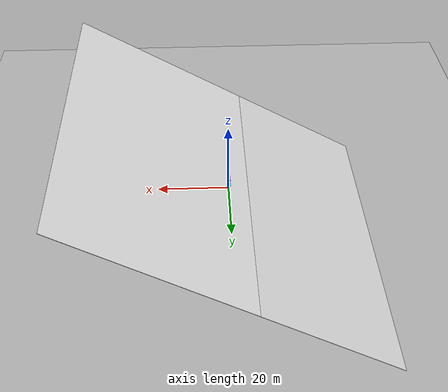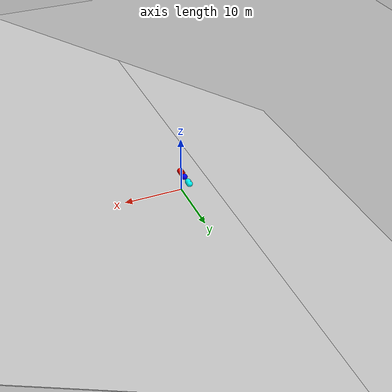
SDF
<sdf version="1.11">
 <world name="auto_inertia_rolling_shapes">
  <physics name="1ms" type="ignored">
   <max_step_size>0.001</max_step_size>
   <real_time_factor>1.0</real_time_factor>
  </physics>
  <plugin filename="gz-sim-physics-system" name="gz::sim::systems::Physics"/>
  <plugin filename="gz-sim-user-commands-system" name="gz::sim::systems::UserCommands"/>
  <plugin filename="gz-sim-scene-broadcaster-system" name="gz::sim::systems::SceneBroadcaster"/>
  <light type="directional" name="sun">
   <pose>0 0 10 0 0 0</pose>
   <diffuse>0.8 0.8 0.8 1</diffuse>
   <specular>0.2 0.2 0.2 1</specular>
   <attenuation>
    <range>1000</range>
    <constant>0.9</constant>
    <linear>0.01</linear>
    <quadratic>0.001</quadratic>
   </attenuation>
   <direction>-0.5 0.1 -0.9</direction>
  </light>
  <model name="inclined_plane">
   <static>true</static>
   <pose>0 0 3 0 -0.52 0</pose>
   <link name="link">
    <collision name="collision">
     <geometry><plane><normal>0 0 1</normal><size>100 100</size></plane></geometry>
    </collision>
    <visual name="visual">
     <geometry><plane><normal>0 0 1</normal><size>100 100</size></plane></geometry>
     <material>
      <ambient>0.8 0.8 0.8 1</ambient>
      <diffuse>0.8 0.8 0.8 1</diffuse>
      <specular>0.8 0.8 0.8 1</specular>
     </material>
    </visual>
   </link>
  </model>
  <model name="ground_plane">
   <static>true</static>
   <link name="link">
    <collision name="collision">
     <geometry><plane><normal>0 0 1</normal><size>100 100</size></plane></geometry>
    </collision>
    <visual name="visual">
     <geometry><plane><normal>0 0 1</normal><size>100 100</size></plane></geometry>
     <material>
      <ambient>0.8 0.8 0.8 1</ambient>
      <diffuse>0.8 0.8 0.8 1</diffuse>
      <specular>0.8 0.8 0.8 1</specular>
     </material>
    </visual>
   </link>
  </model>
  <model name="cylinder">
   <pose>0 0 3.6 1.57079632679 0 0</pose>
   <link name="cylinder_link">
    <inertial auto="true"/>
    <collision name="cylinder_collision">
     <density>7810.0</density>
     <geometry><cylinder><radius>0.5</radius><length>1.0</length></cylinder></geometry>
    </collision>
    <visual name="cylinder_visual">
     <geometry><cylinder><radius>0.5</radius><length>1.0</length></cylinder></geometry>
     <material><ambient>1 0 0 1</ambient><diffuse>1 0 0 1</diffuse><specular>1 0 0 1</specular></material>
    </visual>
   </link>
  </model>
  <model name="sphere">
   <pose>0 1.5 3.6 0 0 0</pose>
   <link name="sphere_link">
    <inertial auto="true"/>
    <collision name="sphere_collision">
     <density>1000</density>
     <geometry><sphere><radius>0.5</radius></sphere></geometry>
    </collision>
    <visual name="sphere_visual">
     <geometry><sphere><radius>0.5</radius></sphere></geometry>
     <material><ambient>0 0 1 1</ambient><diffuse>0 0 1 1</diffuse><specular>0 0 1 1</specular></material>
    </visual>
   </link>
  </model>
  <model name="capsule">
   <pose>0 3.3 3.6 1.57079632679 0 0</pose>
   <link name="capsule_link">
    <inertial auto="true"/>
    <collision name="capsule_collision">
     <density>2710</density>
     <geometry><capsule><radius>0.5</radius><length>0.7</length></capsule></geometry>
    </collision>
    <visual name="capsule_visual">
     <geometry><capsule><radius>0.5</radius><length>0.7</length></capsule></geometry>
     <material><ambient>0 1 1 1</ambient><diffuse>0 1 1 1</diffuse><specular>0 1 1 1</specular></material>
    </visual>
   </link>
  </model>
 </world>
</sdf>
